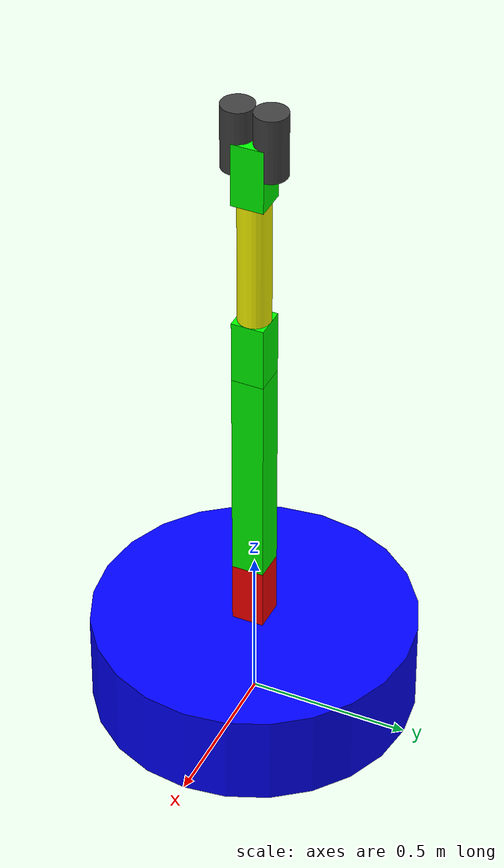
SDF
<sdf version='1.11'>
  <model name='brazo_robert'>
    <link name='base_link'>
      <inertial>
        <pose>0 0 0.14999999999999999 0 0 0</pose>
        <mass>1</mass>
        <inertia>
          <ixx>0.01</ixx>
          <ixy>0</ixy>
          <ixz>0</ixz>
          <iyy>0.01</iyy>
          <iyz>0</iyz>
          <izz>0.01</izz>
        </inertia>
      </inertial>
      <collision name='base_link_collision'>
        <pose>0 0 0.14999999999999999 0 0 0</pose>
        <geometry>
          <cylinder>
            <length>0.29999999999999999</length>
            <radius>0.5</radius>
          </cylinder>
        </geometry>
      </collision>
      <visual name='base_link_visual'>
        <pose>0 0 0.14999999999999999 0 0 0</pose>
        <geometry>
          <cylinder>
            <length>0.29999999999999999</length>
            <radius>0.5</radius>
          </cylinder>
        </geometry>
        <material>
          <diffuse>0 0 1 1</diffuse>
          <ambient>0 0 1 1</ambient>
        </material>
      </visual>
    </link>
    <joint name='segmento1_joint' type='revolute'>
      <pose relative_to='base_link'>0 0 0.29999999999999999 0 0 0</pose>
      <parent>base_link</parent>
      <child>segmento1_link</child>
      <axis>
        <xyz>0 0 1</xyz>
        <limit>
          <lower>-1.5700000000000001</lower>
          <upper>1.5700000000000001</upper>
          <effort>100</effort>
          <velocity>0.5</velocity>
        </limit>
        <dynamics>
          <spring_reference>0</spring_reference>
          <spring_stiffness>0</spring_stiffness>
        </dynamics>
      </axis>
    </joint>
    <link name='segmento1_link'>
      <pose relative_to='segmento1_joint'>0 0 0 0 0 0</pose>
      <inertial>
        <pose>0 0 0.10000000000000001 0 0 0</pose>
        <mass>1</mass>
        <inertia>
          <ixx>0.01</ixx>
          <ixy>0</ixy>
          <ixz>0</ixz>
          <iyy>0.01</iyy>
          <iyz>0</iyz>
          <izz>0.01</izz>
        </inertia>
      </inertial>
      <collision name='segmento1_link_collision'>
        <pose>0 0 0.10000000000000001 0 0 0</pose>
        <geometry>
          <box>
            <size>0.10000000000000001 0.10000000000000001 0.20000000000000001</size>
          </box>
        </geometry>
      </collision>
      <visual name='segmento1_link_visual'>
        <pose>0 0 0.10000000000000001 0 0 0</pose>
        <geometry>
          <box>
            <size>0.10000000000000001 0.10000000000000001 0.20000000000000001</size>
          </box>
        </geometry>
        <material>
          <diffuse>1 0 0 1</diffuse>
          <ambient>1 0 0 1</ambient>
        </material>
      </visual>
    </link>
    <joint name='segmento2_joint' type='revolute'>
      <pose relative_to='segmento1_link'>0 0 0.20000000000000001 0 0 0</pose>
      <parent>segmento1_link</parent>
      <child>segmento2_link</child>
      <axis>
        <xyz>0 1 0</xyz>
        <limit>
          <lower>-1.5700000000000001</lower>
          <upper>1.5700000000000001</upper>
          <effort>100</effort>
          <velocity>0.5</velocity>
        </limit>
        <dynamics>
          <spring_reference>0</spring_reference>
          <spring_stiffness>0</spring_stiffness>
        </dynamics>
      </axis>
    </joint>
    <link name='segmento2_link'>
      <pose relative_to='segmento2_joint'>0 0 0 0 0 0</pose>
      <inertial>
        <pose>0 0 0.34999999999999998 0 0 0</pose>
        <mass>1</mass>
        <inertia>
          <ixx>0.01</ixx>
          <ixy>0</ixy>
          <ixz>0</ixz>
          <iyy>0.01</iyy>
          <iyz>0</iyz>
          <izz>0.01</izz>
        </inertia>
      </inertial>
      <collision name='segmento2_link_collision'>
        <pose>0 0 0.34999999999999998 0 0 0</pose>
        <geometry>
          <box>
            <size>0.10000000000000001 0.10000000000000001 0.69999999999999996</size>
          </box>
        </geometry>
      </collision>
      <visual name='segmento2_link_visual'>
        <pose>0 0 0.34999999999999998 0 0 0</pose>
        <geometry>
          <box>
            <size>0.10000000000000001 0.10000000000000001 0.69999999999999996</size>
          </box>
        </geometry>
        <material>
          <diffuse>0 1 0 1</diffuse>
          <ambient>0 1 0 1</ambient>
        </material>
      </visual>
    </link>
    <joint name='segmento3_joint' type='revolute'>
      <pose relative_to='segmento2_link'>0 0 0.69999999999999996 0 0 0</pose>
      <parent>segmento2_link</parent>
      <child>segmento3_link</child>
      <axis>
        <xyz>0 1 0</xyz>
        <limit>
          <lower>-1.5700000000000001</lower>
          <upper>1.5700000000000001</upper>
          <effort>100</effort>
          <velocity>0.5</velocity>
        </limit>
        <dynamics>
          <spring_reference>0</spring_reference>
          <spring_stiffness>0</spring_stiffness>
        </dynamics>
      </axis>
    </joint>
    <link name='segmento3_link'>
      <pose relative_to='segmento3_joint'>0 0 0 0 0 0</pose>
      <inertial>
        <pose>0 0 0.10000000000000001 0 0 0</pose>
        <mass>1</mass>
        <inertia>
          <ixx>0.01</ixx>
          <ixy>0</ixy>
          <ixz>0</ixz>
          <iyy>0.01</iyy>
          <iyz>0</iyz>
          <izz>0.01</izz>
        </inertia>
      </inertial>
      <collision name='segmento3_link_collision'>
        <pose>0 0 0.10000000000000001 0 0 0</pose>
        <geometry>
          <box>
            <size>0.10000000000000001 0.10000000000000001 0.20000000000000001</size>
          </box>
        </geometry>
      </collision>
      <visual name='segmento3_link_visual'>
        <pose>0 0 0.10000000000000001 0 0 0</pose>
        <geometry>
          <box>
            <size>0.10000000000000001 0.10000000000000001 0.20000000000000001</size>
          </box>
        </geometry>
        <material>
          <diffuse>0 1 0 1</diffuse>
          <ambient>0 1 0 1</ambient>
        </material>
      </visual>
    </link>
    <joint name='segmento4_rot' type='revolute'>
      <pose relative_to='segmento3_link'>0 0 0.20000000000000001 0 0 0</pose>
      <parent>segmento3_link</parent>
      <child>segmento4_link</child>
      <axis>
        <xyz>0 0 1</xyz>
        <limit>
          <lower>-inf</lower>
          <upper>inf</upper>
        </limit>
        <dynamics>
          <spring_reference>0</spring_reference>
          <spring_stiffness>0</spring_stiffness>
        </dynamics>
      </axis>
    </joint>
    <link name='segmento4_link'>
      <pose relative_to='segmento4_rot'>0 0 0 0 0 0</pose>
      <inertial>
        <pose>0 0 0.20000000000000001 0 0 0</pose>
        <mass>0.5</mass>
        <inertia>
          <ixx>0.01</ixx>
          <ixy>0</ixy>
          <ixz>0</ixz>
          <iyy>0.01</iyy>
          <iyz>0</iyz>
          <izz>0.01</izz>
        </inertia>
      </inertial>
      <collision name='segmento4_link_collision'>
        <pose>0 0 0.20000000000000001 0 0 0</pose>
        <geometry>
          <cylinder>
            <length>0.40000000000000002</length>
            <radius>0.050000000000000003</radius>
          </cylinder>
        </geometry>
      </collision>
      <visual name='segmento4_link_visual'>
        <pose>0 0 0.20000000000000001 0 0 0</pose>
        <geometry>
          <cylinder>
            <length>0.40000000000000002</length>
            <radius>0.050000000000000003</radius>
          </cylinder>
        </geometry>
        <material>
          <diffuse>1 1 0 1</diffuse>
          <ambient>1 1 0 1</ambient>
        </material>
      </visual>
    </link>
    <joint name='segmento5_joint' type='revolute'>
      <pose relative_to='segmento4_link'>0 0 0.40000000000000002 0 0 0</pose>
      <parent>segmento4_link</parent>
      <child>segmento5_link</child>
      <axis>
        <xyz>0 1 0</xyz>
        <limit>
          <lower>-1.5700000000000001</lower>
          <upper>1.5700000000000001</upper>
          <effort>100</effort>
          <velocity>0.5</velocity>
        </limit>
        <dynamics>
          <spring_reference>0</spring_reference>
          <spring_stiffness>0</spring_stiffness>
        </dynamics>
      </axis>
    </joint>
    <link name='segmento5_link'>
      <pose relative_to='segmento5_joint'>0 0 0 0 0 0</pose>
      <inertial>
        <pose>0 0 0.10000000000000001 0 0 0</pose>
        <mass>1</mass>
        <inertia>
          <ixx>0.01</ixx>
          <ixy>0</ixy>
          <ixz>0</ixz>
          <iyy>0.01</iyy>
          <iyz>0</iyz>
          <izz>0.01</izz>
        </inertia>
      </inertial>
      <collision name='segmento5_link_collision'>
        <pose>0 0 0.10000000000000001 0 0 0</pose>
        <geometry>
          <box>
            <size>0.10000000000000001 0.10000000000000001 0.20000000000000001</size>
          </box>
        </geometry>
      </collision>
      <visual name='segmento5_link_visual'>
        <pose>0 0 0.10000000000000001 0 0 0</pose>
        <geometry>
          <box>
            <size>0.10000000000000001 0.10000000000000001 0.20000000000000001</size>
          </box>
        </geometry>
        <material>
          <diffuse>0 1 0 1</diffuse>
          <ambient>0 1 0 1</ambient>
        </material>
      </visual>
    </link>
    <joint name='gripper_left_joint' type='prismatic'>
      <pose relative_to='segmento5_link'>0 0.050000000000000003 0.20000000000000001 0 0 0</pose>
      <parent>segmento5_link</parent>
      <child>gripper_left</child>
      <axis>
        <xyz>0 1 0</xyz>
        <limit>
          <lower>0</lower>
          <upper>0.050000000000000003</upper>
          <effort>10</effort>
          <velocity>0.10000000000000001</velocity>
        </limit>
        <dynamics>
          <spring_reference>0</spring_reference>
          <spring_stiffness>0</spring_stiffness>
        </dynamics>
      </axis>
    </joint>
    <link name='gripper_left'>
      <pose relative_to='gripper_left_joint'>0 0 0 0 0 0</pose>
      <inertial>
        <pose>0 0 0 0 0 0</pose>
        <mass>0.10000000000000001</mass>
        <inertia>
          <ixx>0.001</ixx>
          <ixy>0</ixy>
          <ixz>0</ixz>
          <iyy>0.001</iyy>
          <iyz>0</iyz>
          <izz>0.001</izz>
        </inertia>
      </inertial>
      <visual name='gripper_left_visual'>
        <pose>0 0 0 0 0 0</pose>
        <geometry>
          <cylinder>
            <length>0.20000000000000001</length>
            <radius>0.050000000000000003</radius>
          </cylinder>
        </geometry>
        <material>
          <diffuse>0.25 0.25 0.25 1</diffuse>
          <ambient>0.25 0.25 0.25 1</ambient>
        </material>
      </visual>
    </link>
    <joint name='gripper_right_joint' type='prismatic'>
      <pose relative_to='segmento5_link'>0 -0.050000000000000003 0.20000000000000001 0 0 0</pose>
      <parent>segmento5_link</parent>
      <child>gripper_right</child>
      <axis>
        <xyz>0 -1 0</xyz>
        <limit>
          <lower>0</lower>
          <upper>0.050000000000000003</upper>
          <effort>10</effort>
          <velocity>0.10000000000000001</velocity>
        </limit>
        <dynamics>
          <spring_reference>0</spring_reference>
          <spring_stiffness>0</spring_stiffness>
        </dynamics>
      </axis>
    </joint>
    <link name='gripper_right'>
      <pose relative_to='gripper_right_joint'>0 0 0 0 0 0</pose>
      <inertial>
        <pose>0 0 0 0 0 0</pose>
        <mass>0.10000000000000001</mass>
        <inertia>
          <ixx>0.001</ixx>
          <ixy>0</ixy>
          <ixz>0</ixz>
          <iyy>0.001</iyy>
          <iyz>0</iyz>
          <izz>0.001</izz>
        </inertia>
      </inertial>
      <visual name='gripper_right_visual'>
        <pose>0 0 0 0 0 0</pose>
        <geometry>
          <cylinder>
            <length>0.20000000000000001</length>
            <radius>0.050000000000000003</radius>
          </cylinder>
        </geometry>
        <material>
          <diffuse>0.25 0.25 0.25 1</diffuse>
          <ambient>0.25 0.25 0.25 1</ambient>
        </material>
      </visual>
    </link>
  </model>
</sdf>
